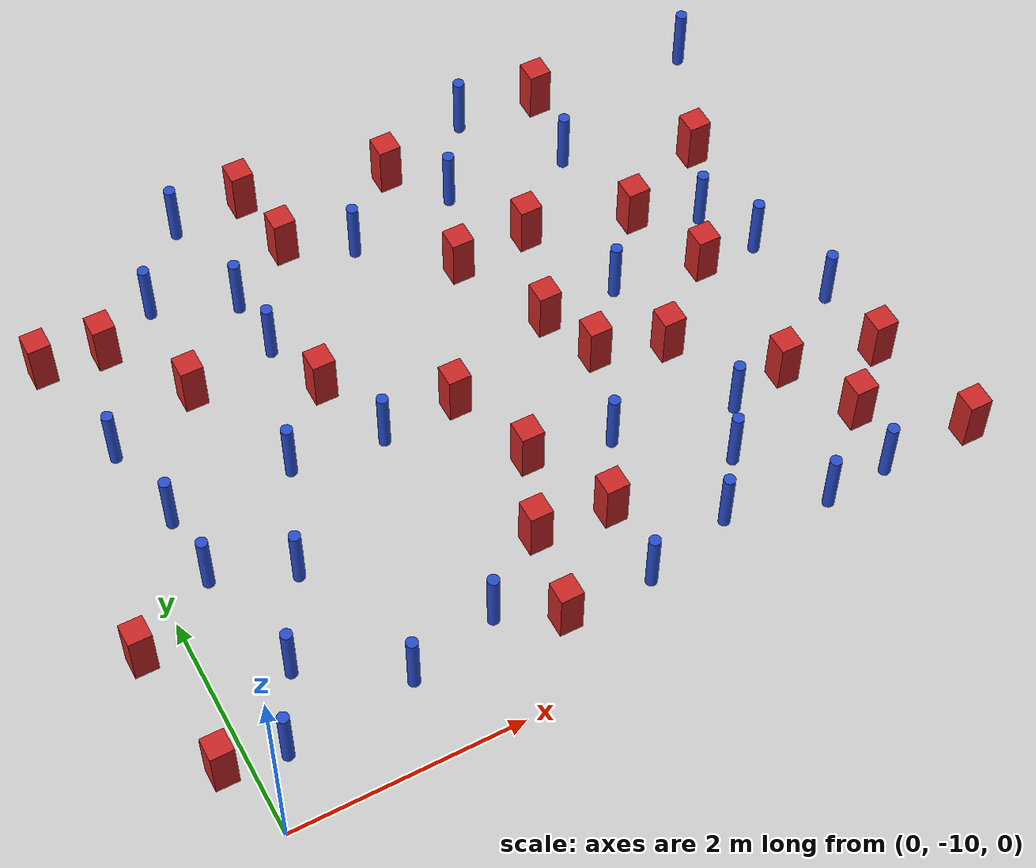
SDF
<sdf version="1.6">
 <world name="default">
  <model name="ground_plane">
   <static>1</static>
   <link name="link">
    <collision name="collision">
     <geometry><plane><normal>0 0 1</normal><size>100 100</size></plane></geometry>
     <surface><friction><ode><mu>100</mu><mu2>50</mu2></ode></friction></surface>
    </collision>
    <visual name="visual">
     <cast_shadows>0</cast_shadows>
     <geometry><plane><normal>0 0 1</normal><size>100 100</size></plane></geometry>
     <material>
      <ambient>1.0 1.0 1.0 1.0</ambient>
      <diffuse>0.8 0.8 0.8 1.0</diffuse>
      <specular>0.01 0.01 0.01 1.000000</specular>
     </material>
    </visual>
   </link>
  </model>
  <model name="pole_obstacle3">
   <static>true</static>
   <pose>2.84458978488 -5.32492261194 2.88873142074e-08 -9.90536689859e-09 4.60219948989e-07 -1.20965994961e-07</pose>
   <link name="link">
    <pose>0 0 0.3 0 -0 0</pose>
    <inertial>
     <mass>1</mass>
     <inertia><ixx>0.145833</ixx><ixy>0</ixy><ixz>0</ixz><iyy>0.145833</iyy><iyz>0</iyz><izz>0.125</izz></inertia>
    </inertial>
    <collision name="collision">
     <geometry><cylinder><radius>0.05</radius><length>.6</length></cylinder></geometry>
    </collision>
    <visual name="visual">
     <geometry><cylinder><radius>0.05</radius><length>.6</length></cylinder></geometry>
     <material>
      <script><name>Gazebo/Blue</name><uri>file://media/materials/scripts/gazebo.material</uri></script>
     </material>
    </visual>
   </link>
  </model>
  <model name="square_post_obstacle5">
   <static>true</static>
   <pose>0.511136152608 -5.36481793861 8.22691968438e-08 7.2212513382e-06 -7.54495500217e-07 2.29674213826e-05</pose>
   <link name="link">
    <pose>0 0 0.25 0 -0 0</pose>
    <inertial>
     <mass>100</mass>
     <inertia>
      <ixx>0.166667</ixx>
      <ixy>0</ixy>
      <ixz>0</ixz>
      <iyy>0.166667</iyy>
      <iyz>0</iyz>
      <izz>0.166667</izz>
     </inertia>
    </inertial>
    <collision name="collision"><geometry><box><size>.2 .2 .5</size></box></geometry></collision>
    <visual name="visual">
     <geometry><box><size>.2 .2 .5</size></box></geometry>
     <material>
      <script><name>Gazebo/Red</name><uri>file://media/materials/scripts/gazebo.material</uri></script>
     </material>
    </visual>
   </link>
  </model>
  <model name="square_post_obstacle6">
   <static>true</static>
   <pose>2.81641735757 -8.63394709874 8.22691968438e-08 7.22125133819e-06 -7.54495500217e-07 2.29674213826e-05</pose>
   <link name="link">
    <pose>0 0 0.25 0 -0 0</pose>
    <inertial>
     <mass>100</mass>
     <inertia>
      <ixx>0.166667</ixx>
      <ixy>0</ixy>
      <ixz>0</ixz>
      <iyy>0.166667</iyy>
      <iyz>0</iyz>
      <izz>0.166667</izz>
     </inertia>
    </inertial>
    <collision name="collision"><geometry><box><size>.2 .2 .5</size></box></geometry></collision>
    <visual name="visual">
     <geometry><box><size>.2 .2 .5</size></box></geometry>
     <material>
      <script><name>Gazebo/Red</name><uri>file://media/materials/scripts/gazebo.material</uri></script>
     </material>
    </visual>
   </link>
  </model>
  <model name="square_post_obstacle8">
   <static>true</static>
   <pose>1.95207442491 -6.52803714667 8.22691968438e-08 7.2212513382e-06 -7.54495500217e-07 2.29674213826e-05</pose>
   <link name="link">
    <pose>0 0 0.25 0 -0 0</pose>
    <inertial>
     <mass>100</mass>
     <inertia>
      <ixx>0.166667</ixx>
      <ixy>0</ixy>
      <ixz>0</ixz>
      <iyy>0.166667</iyy>
      <iyz>0</iyz>
      <izz>0.166667</izz>
     </inertia>
    </inertial>
    <collision name="collision"><geometry><box><size>.2 .2 .5</size></box></geometry></collision>
    <visual name="visual">
     <geometry><box><size>.2 .2 .5</size></box></geometry>
     <material>
      <script><name>Gazebo/Red</name><uri>file://media/materials/scripts/gazebo.material</uri></script>
     </material>
    </visual>
   </link>
  </model>
  <model name="pole_obstacle9">
   <static>true</static>
   <pose>4.30141901712 -4.47266025773 2.88873142074e-08 -9.90536690842e-09 4.60219948965e-07 -1.20965994976e-07</pose>
   <link name="link">
    <pose>0 0 0.3 0 -0 0</pose>
    <inertial>
     <mass>1</mass>
     <inertia><ixx>0.145833</ixx><ixy>0</ixy><ixz>0</ixz><iyy>0.145833</iyy><iyz>0</iyz><izz>0.125</izz></inertia>
    </inertial>
    <collision name="collision">
     <geometry><cylinder><radius>0.05</radius><length>.6</length></cylinder></geometry>
    </collision>
    <visual name="visual">
     <geometry><cylinder><radius>0.05</radius><length>.6</length></cylinder></geometry>
     <material>
      <script><name>Gazebo/Blue</name><uri>file://media/materials/scripts/gazebo.material</uri></script>
     </material>
    </visual>
   </link>
  </model>
  <model name="square_post_obstacle17">
   <static>true</static>
   <pose>2.85667429622 -7.17951583488 8.22691968438e-08 7.2212513382e-06 -7.54495500217e-07 2.29674213826e-05</pose>
   <link name="link">
    <pose>0 0 0.25 0 -0 0</pose>
    <inertial>
     <mass>100</mass>
     <inertia>
      <ixx>0.166667</ixx>
      <ixy>0</ixy>
      <ixz>0</ixz>
      <iyy>0.166667</iyy>
      <iyz>0</iyz>
      <izz>0.166667</izz>
     </inertia>
    </inertial>
    <collision name="collision"><geometry><box><size>.2 .2 .5</size></box></geometry></collision>
    <visual name="visual">
     <geometry><box><size>.2 .2 .5</size></box></geometry>
     <material>
      <script><name>Gazebo/Red</name><uri>file://media/materials/scripts/gazebo.material</uri></script>
     </material>
    </visual>
   </link>
  </model>
  <model name="square_post_obstacle19">
   <static>true</static>
   <pose>2.67007542593 -9.38690693681 8.22691968438e-08 7.22125133819e-06 -7.54495500217e-07 2.29674213826e-05</pose>
   <link name="link">
    <pose>0 0 0.25 0 -0 0</pose>
    <inertial>
     <mass>100</mass>
     <inertia>
      <ixx>0.166667</ixx>
      <ixy>0</ixy>
      <ixz>0</ixz>
      <iyy>0.166667</iyy>
      <iyz>0</iyz>
      <izz>0.166667</izz>
     </inertia>
    </inertial>
    <collision name="collision"><geometry><box><size>.2 .2 .5</size></box></geometry></collision>
    <visual name="visual">
     <geometry><box><size>.2 .2 .5</size></box></geometry>
     <material>
      <script><name>Gazebo/Red</name><uri>file://media/materials/scripts/gazebo.material</uri></script>
     </material>
    </visual>
   </link>
  </model>
  <model name="square_post_obstacle22">
   <static>true</static>
   <pose>3.46571762446 -8.69430635986 8.22691968438e-08 7.22125133819e-06 -7.54495500217e-07 2.29674213826e-05</pose>
   <link name="link">
    <pose>0 0 0.25 0 -0 0</pose>
    <inertial>
     <mass>100</mass>
     <inertia>
      <ixx>0.166667</ixx>
      <ixy>0</ixy>
      <ixz>0</ixz>
      <iyy>0.166667</iyy>
      <iyz>0</iyz>
      <izz>0.166667</izz>
     </inertia>
    </inertial>
    <collision name="collision"><geometry><box><size>.2 .2 .5</size></box></geometry></collision>
    <visual name="visual">
     <geometry><box><size>.2 .2 .5</size></box></geometry>
     <material>
      <script><name>Gazebo/Red</name><uri>file://media/materials/scripts/gazebo.material</uri></script>
     </material>
    </visual>
   </link>
  </model>
  <model name="pole_obstacle16">
   <static>true</static>
   <pose>0.190259198719 -6.33694293951 2.88873142074e-08 -9.90536689711e-09 4.60219948992e-07 -1.2096599496e-07</pose>
   <link name="link">
    <pose>0 0 0.3 0 -0 0</pose>
    <inertial>
     <mass>1</mass>
     <inertia><ixx>0.145833</ixx><ixy>0</ixy><ixz>0</ixz><iyy>0.145833</iyy><iyz>0</iyz><izz>0.125</izz></inertia>
    </inertial>
    <collision name="collision">
     <geometry><cylinder><radius>0.05</radius><length>.6</length></cylinder></geometry>
    </collision>
    <visual name="visual">
     <geometry><cylinder><radius>0.05</radius><length>.6</length></cylinder></geometry>
     <material>
      <script><name>Gazebo/Blue</name><uri>file://media/materials/scripts/gazebo.material</uri></script>
     </material>
    </visual>
   </link>
  </model>
  <model name="square_post_obstacle24">
   <static>true</static>
   <pose>4.21383172551 -5.89049706894 8.22691968438e-08 7.2212513382e-06 -7.54495500217e-07 2.29674213826e-05</pose>
   <link name="link">
    <pose>0 0 0.25 0 -0 0</pose>
    <inertial>
     <mass>100</mass>
     <inertia>
      <ixx>0.166667</ixx>
      <ixy>0</ixy>
      <ixz>0</ixz>
      <iyy>0.166667</iyy>
      <iyz>0</iyz>
      <izz>0.166667</izz>
     </inertia>
    </inertial>
    <collision name="collision"><geometry><box><size>.2 .2 .5</size></box></geometry></collision>
    <visual name="visual">
     <geometry><box><size>.2 .2 .5</size></box></geometry>
     <material>
      <script><name>Gazebo/Red</name><uri>file://media/materials/scripts/gazebo.material</uri></script>
     </material>
    </visual>
   </link>
  </model>
  <model name="pole_obstacle28">
   <static>true</static>
   <pose>1.75358813247 -5.96166153707 2.88873142074e-08 -9.90536689852e-09 4.60219948989e-07 -1.2096599496e-07</pose>
   <link name="link">
    <pose>0 0 0.3 0 -0 0</pose>
    <inertial>
     <mass>1</mass>
     <inertia><ixx>0.145833</ixx><ixy>0</ixy><ixz>0</ixz><iyy>0.145833</iyy><iyz>0</iyz><izz>0.125</izz></inertia>
    </inertial>
    <collision name="collision">
     <geometry><cylinder><radius>0.05</radius><length>.6</length></cylinder></geometry>
    </collision>
    <visual name="visual">
     <geometry><cylinder><radius>0.05</radius><length>.6</length></cylinder></geometry>
     <material>
      <script><name>Gazebo/Blue</name><uri>file://media/materials/scripts/gazebo.material</uri></script>
     </material>
    </visual>
   </link>
  </model>
  <model name="pole_obstacle40">
   <static>true</static>
   <pose>4.92237831998 -5.26978339736 2.88873142074e-08 -9.90536690842e-09 4.60219948965e-07 -1.20965994976e-07</pose>
   <link name="link">
    <pose>0 0 0.3 0 -0 0</pose>
    <inertial>
     <mass>1</mass>
     <inertia><ixx>0.145833</ixx><ixy>0</ixy><ixz>0</ixz><iyy>0.145833</iyy><iyz>0</iyz><izz>0.125</izz></inertia>
    </inertial>
    <collision name="collision">
     <geometry><cylinder><radius>0.05</radius><length>.6</length></cylinder></geometry>
    </collision>
    <visual name="visual">
     <geometry><cylinder><radius>0.05</radius><length>.6</length></cylinder></geometry>
     <material>
      <script><name>Gazebo/Blue</name><uri>file://media/materials/scripts/gazebo.material</uri></script>
     </material>
    </visual>
   </link>
  </model>
  <model name="square_post_obstacle64">
   <static>true</static>
   <pose>5.02813966241 -4.55443018047 8.22691968438e-08 7.22125133819e-06 -7.54495500217e-07 2.29674213826e-05</pose>
   <link name="link">
    <pose>0 0 0.25 0 -0 0</pose>
    <inertial>
     <mass>100</mass>
     <inertia>
      <ixx>0.166667</ixx>
      <ixy>0</ixy>
      <ixz>0</ixz>
      <iyy>0.166667</iyy>
      <iyz>0</iyz>
      <izz>0.166667</izz>
     </inertia>
    </inertial>
    <collision name="collision"><geometry><box><size>.2 .2 .5</size></box></geometry></collision>
    <visual name="visual">
     <geometry><box><size>.2 .2 .5</size></box></geometry>
     <material>
      <script><name>Gazebo/Red</name><uri>file://media/materials/scripts/gazebo.material</uri></script>
     </material>
    </visual>
   </link>
  </model>
  <model name="square_post_obstacle65">
   <static>true</static>
   <pose>3.53477708132 -5.93521886542 8.22691968438e-08 7.2212513382e-06 -7.54495500217e-07 2.29674213826e-05</pose>
   <link name="link">
    <pose>0 0 0.25 0 -0 0</pose>
    <inertial>
     <mass>100</mass>
     <inertia>
      <ixx>0.166667</ixx>
      <ixy>0</ixy>
      <ixz>0</ixz>
      <iyy>0.166667</iyy>
      <iyz>0</iyz>
      <izz>0.166667</izz>
     </inertia>
    </inertial>
    <collision name="collision"><geometry><box><size>.2 .2 .5</size></box></geometry></collision>
    <visual name="visual">
     <geometry><box><size>.2 .2 .5</size></box></geometry>
     <material>
      <script><name>Gazebo/Red</name><uri>file://media/materials/scripts/gazebo.material</uri></script>
     </material>
    </visual>
   </link>
  </model>
  <model name="square_post_obstacle67">
   <static>true</static>
   <pose>3.11410594264 -7.94611886072 8.22691968438e-08 7.2212513382e-06 -7.54495500217e-07 2.29674213826e-05</pose>
   <link name="link">
    <pose>0 0 0.25 0 -0 0</pose>
    <inertial>
     <mass>100</mass>
     <inertia>
      <ixx>0.166667</ixx>
      <ixy>0</ixy>
      <ixz>0</ixz>
      <iyy>0.166667</iyy>
      <iyz>0</iyz>
      <izz>0.166667</izz>
     </inertia>
    </inertial>
    <collision name="collision"><geometry><box><size>.2 .2 .5</size></box></geometry></collision>
    <visual name="visual">
     <geometry><box><size>.2 .2 .5</size></box></geometry>
     <material>
      <script><name>Gazebo/Red</name><uri>file://media/materials/scripts/gazebo.material</uri></script>
     </material>
    </visual>
   </link>
  </model>
  <model name="square_post_obstacle68">
   <static>true</static>
   <pose>3.91148928923 -6.77768033033 8.22691968438e-08 7.2212513382e-06 -7.54495500217e-07 2.29674213826e-05</pose>
   <link name="link">
    <pose>0 0 0.25 0 -0 0</pose>
    <inertial>
     <mass>100</mass>
     <inertia>
      <ixx>0.166667</ixx>
      <ixy>0</ixy>
      <ixz>0</ixz>
      <iyy>0.166667</iyy>
      <iyz>0</iyz>
      <izz>0.166667</izz>
     </inertia>
    </inertial>
    <collision name="collision"><geometry><box><size>.2 .2 .5</size></box></geometry></collision>
    <visual name="visual">
     <geometry><box><size>.2 .2 .5</size></box></geometry>
     <material>
      <script><name>Gazebo/Red</name><uri>file://media/materials/scripts/gazebo.material</uri></script>
     </material>
    </visual>
   </link>
  </model>
  <model name="pole_obstacle72">
   <static>true</static>
   <pose>3.81916104366 -8.09444799313 2.88873142074e-08 -9.90536692318e-09 4.6021994893e-07 -1.20965994988e-07</pose>
   <link name="link">
    <pose>0 0 0.3 0 -0 0</pose>
    <inertial>
     <mass>1</mass>
     <inertia><ixx>0.145833</ixx><ixy>0</ixy><ixz>0</ixz><iyy>0.145833</iyy><iyz>0</iyz><izz>0.125</izz></inertia>
    </inertial>
    <collision name="collision">
     <geometry><cylinder><radius>0.05</radius><length>.6</length></cylinder></geometry>
    </collision>
    <visual name="visual">
     <geometry><cylinder><radius>0.05</radius><length>.6</length></cylinder></geometry>
     <material>
      <script><name>Gazebo/Blue</name><uri>file://media/materials/scripts/gazebo.material</uri></script>
     </material>
    </visual>
   </link>
  </model>
  <model name="pole_obstacle74">
   <static>true</static>
   <pose>3.44195225583 -9.38317818951 2.88873142074e-08 -9.90536692318e-09 4.6021994893e-07 -1.20965994988e-07</pose>
   <link name="link">
    <pose>0 0 0.3 0 -0 0</pose>
    <inertial>
     <mass>1</mass>
     <inertia><ixx>0.145833</ixx><ixy>0</ixy><ixz>0</ixz><iyy>0.145833</iyy><iyz>0</iyz><izz>0.125</izz></inertia>
    </inertial>
    <collision name="collision">
     <geometry><cylinder><radius>0.05</radius><length>.6</length></cylinder></geometry>
    </collision>
    <visual name="visual">
     <geometry><cylinder><radius>0.05</radius><length>.6</length></cylinder></geometry>
     <material>
      <script><name>Gazebo/Blue</name><uri>file://media/materials/scripts/gazebo.material</uri></script>
     </material>
    </visual>
   </link>
  </model>
  <model name="pole_obstacle87">
   <static>true</static>
   <pose>4.23487923382 -9.17419889963 2.88873142074e-08 -9.9053668967e-09 4.60219948993e-07 -1.20965994957e-07</pose>
   <link name="link">
    <pose>0 0 0.3 0 -0 0</pose>
    <inertial>
     <mass>1</mass>
     <inertia><ixx>0.145833</ixx><ixy>0</ixy><ixz>0</ixz><iyy>0.145833</iyy><iyz>0</iyz><izz>0.125</izz></inertia>
    </inertial>
    <collision name="collision">
     <geometry><cylinder><radius>0.05</radius><length>.6</length></cylinder></geometry>
    </collision>
    <visual name="visual">
     <geometry><cylinder><radius>0.05</radius><length>.6</length></cylinder></geometry>
     <material>
      <script><name>Gazebo/Blue</name><uri>file://media/materials/scripts/gazebo.material</uri></script>
     </material>
    </visual>
   </link>
  </model>
  <model name="pole_obstacle94">
   <static>true</static>
   <pose>0.374153041678 -7.7684381649 2.88873142074e-08 -9.90536689683e-09 4.60219948993e-07 -1.20965994957e-07</pose>
   <link name="link">
    <pose>0 0 0.3 0 -0 0</pose>
    <inertial>
     <mass>1</mass>
     <inertia><ixx>0.145833</ixx><ixy>0</ixy><ixz>0</ixz><iyy>0.145833</iyy><iyz>0</iyz><izz>0.125</izz></inertia>
    </inertial>
    <collision name="collision">
     <geometry><cylinder><radius>0.05</radius><length>.6</length></cylinder></geometry>
    </collision>
    <visual name="visual">
     <geometry><cylinder><radius>0.05</radius><length>.6</length></cylinder></geometry>
     <material>
      <script><name>Gazebo/Blue</name><uri>file://media/materials/scripts/gazebo.material</uri></script>
     </material>
    </visual>
   </link>
  </model>
  <model name="pole_obstacle95">
   <static>true</static>
   <pose>0.603857188693 -8.80176054059 2.88873142074e-08 -9.90536690779e-09 4.60219948967e-07 -1.20965994975e-07</pose>
   <link name="link">
    <pose>0 0 0.3 0 -0 0</pose>
    <inertial>
     <mass>1</mass>
     <inertia><ixx>0.145833</ixx><ixy>0</ixy><ixz>0</ixz><iyy>0.145833</iyy><iyz>0</iyz><izz>0.125</izz></inertia>
    </inertial>
    <collision name="collision">
     <geometry><cylinder><radius>0.05</radius><length>.6</length></cylinder></geometry>
    </collision>
    <visual name="visual">
     <geometry><cylinder><radius>0.05</radius><length>.6</length></cylinder></geometry>
     <material>
      <script><name>Gazebo/Blue</name><uri>file://media/materials/scripts/gazebo.material</uri></script>
     </material>
    </visual>
   </link>
  </model>
  <model name="square_post_obstacle84">
   <static>true</static>
   <pose>-0.365849559244 -8.18689786068 8.22691968438e-08 7.22125133819e-06 -7.54495500217e-07 2.29674213826e-05</pose>
   <link name="link">
    <pose>0 0 0.25 0 -0 0</pose>
    <inertial>
     <mass>100</mass>
     <inertia>
      <ixx>0.166667</ixx>
      <ixy>0</ixy>
      <ixz>0</ixz>
      <iyy>0.166667</iyy>
      <iyz>0</iyz>
      <izz>0.166667</izz>
     </inertia>
    </inertial>
    <collision name="collision"><geometry><box><size>.2 .2 .5</size></box></geometry></collision>
    <visual name="visual">
     <geometry><box><size>.2 .2 .5</size></box></geometry>
     <material>
      <script><name>Gazebo/Red</name><uri>file://media/materials/scripts/gazebo.material</uri></script>
     </material>
    </visual>
   </link>
  </model>
  <model name="pole_obstacle98">
   <static>true</static>
   <pose>1.02524683179 -8.05044631468 2.88873142074e-08 -9.90536690572e-09 4.60219948972e-07 -1.20965994971e-07</pose>
   <link name="link">
    <pose>0 0 0.3 0 -0 0</pose>
    <inertial>
     <mass>1</mass>
     <inertia><ixx>0.145833</ixx><ixy>0</ixy><ixz>0</ixz><iyy>0.145833</iyy><iyz>0</iyz><izz>0.125</izz></inertia>
    </inertial>
    <collision name="collision">
     <geometry><cylinder><radius>0.05</radius><length>.6</length></cylinder></geometry>
    </collision>
    <visual name="visual">
     <geometry><cylinder><radius>0.05</radius><length>.6</length></cylinder></geometry>
     <material>
      <script><name>Gazebo/Blue</name><uri>file://media/materials/scripts/gazebo.material</uri></script>
     </material>
    </visual>
   </link>
  </model>
  <model name="pole_obstacle99">
   <static>true</static>
   <pose>2.19051698126 -7.21258978251 2.88873142074e-08 -9.90536689859e-09 4.60219948989e-07 -1.20965994961e-07</pose>
   <link name="link">
    <pose>0 0 0.3 0 -0 0</pose>
    <inertial>
     <mass>1</mass>
     <inertia><ixx>0.145833</ixx><ixy>0</ixy><ixz>0</ixz><iyy>0.145833</iyy><iyz>0</iyz><izz>0.125</izz></inertia>
    </inertial>
    <collision name="collision">
     <geometry><cylinder><radius>0.05</radius><length>.6</length></cylinder></geometry>
    </collision>
    <visual name="visual">
     <geometry><cylinder><radius>0.05</radius><length>.6</length></cylinder></geometry>
     <material>
      <script><name>Gazebo/Blue</name><uri>file://media/materials/scripts/gazebo.material</uri></script>
     </material>
    </visual>
   </link>
  </model>
  <model name="pole_obstacle102">
   <static>true</static>
   <pose>1.39863404991 -9.30623319482 2.88873142074e-08 -9.90536690474e-09 4.60219948974e-07 -1.2096599497e-07</pose>
   <link name="link">
    <pose>0 0 0.3 0 -0 0</pose>
    <inertial>
     <mass>1</mass>
     <inertia><ixx>0.145833</ixx><ixy>0</ixy><ixz>0</ixz><iyy>0.145833</iyy><iyz>0</iyz><izz>0.125</izz></inertia>
    </inertial>
    <collision name="collision">
     <geometry><cylinder><radius>0.05</radius><length>.6</length></cylinder></geometry>
    </collision>
    <visual name="visual">
     <geometry><cylinder><radius>0.05</radius><length>.6</length></cylinder></geometry>
     <material>
      <script><name>Gazebo/Blue</name><uri>file://media/materials/scripts/gazebo.material</uri></script>
     </material>
    </visual>
   </link>
  </model>
  <model name="pole_obstacle106">
   <static>true</static>
   <pose>0.342612914123 -7.13017407084 2.88873142074e-08 -9.90536689683e-09 4.60219948993e-07 -1.20965994957e-07</pose>
   <link name="link">
    <pose>0 0 0.3 0 -0 0</pose>
    <inertial>
     <mass>1</mass>
     <inertia><ixx>0.145833</ixx><ixy>0</ixy><ixz>0</ixz><iyy>0.145833</iyy><iyz>0</iyz><izz>0.125</izz></inertia>
    </inertial>
    <collision name="collision">
     <geometry><cylinder><radius>0.05</radius><length>.6</length></cylinder></geometry>
    </collision>
    <visual name="visual">
     <geometry><cylinder><radius>0.05</radius><length>.6</length></cylinder></geometry>
     <material>
      <script><name>Gazebo/Blue</name><uri>file://media/materials/scripts/gazebo.material</uri></script>
     </material>
    </visual>
   </link>
  </model>
  <model name="pole_obstacle129">
   <static>true</static>
   <pose>5.65396232284 -6.40262588213 2.88873142074e-08 -9.90536690842e-09 4.60219948965e-07 -1.20965994976e-07</pose>
   <link name="link">
    <pose>0 0 0.3 0 -0 0</pose>
    <inertial>
     <mass>1</mass>
     <inertia><ixx>0.145833</ixx><ixy>0</ixy><ixz>0</ixz><iyy>0.145833</iyy><iyz>0</iyz><izz>0.125</izz></inertia>
    </inertial>
    <collision name="collision">
     <geometry><cylinder><radius>0.05</radius><length>.6</length></cylinder></geometry>
    </collision>
    <visual name="visual">
     <geometry><cylinder><radius>0.05</radius><length>.6</length></cylinder></geometry>
     <material>
      <script><name>Gazebo/Blue</name><uri>file://media/materials/scripts/gazebo.material</uri></script>
     </material>
    </visual>
   </link>
  </model>
  <model name="square_post_obstacle114">
   <static>true</static>
   <pose>4.68883700587 -7.49297486902 8.22691968438e-08 7.2212513382e-06 -7.54495500217e-07 2.29674213826e-05</pose>
   <link name="link">
    <pose>0 0 0.25 0 -0 0</pose>
    <inertial>
     <mass>100</mass>
     <inertia>
      <ixx>0.166667</ixx>
      <ixy>0</ixy>
      <ixz>0</ixz>
      <iyy>0.166667</iyy>
      <iyz>0</iyz>
      <izz>0.166667</izz>
     </inertia>
    </inertial>
    <collision name="collision"><geometry><box><size>.2 .2 .5</size></box></geometry></collision>
    <visual name="visual">
     <geometry><box><size>.2 .2 .5</size></box></geometry>
     <material>
      <script><name>Gazebo/Red</name><uri>file://media/materials/scripts/gazebo.material</uri></script>
     </material>
    </visual>
   </link>
  </model>
  <model name="pole_obstacle130">
   <static>true</static>
   <pose>2.18601556092 -9.11193507051 2.88873142074e-08 -9.90536692318e-09 4.6021994893e-07 -1.20965994988e-07</pose>
   <link name="link">
    <pose>0 0 0.3 0 -0 0</pose>
    <inertial>
     <mass>1</mass>
     <inertia><ixx>0.145833</ixx><ixy>0</ixy><ixz>0</ixz><iyy>0.145833</iyy><iyz>0</iyz><izz>0.125</izz></inertia>
    </inertial>
    <collision name="collision">
     <geometry><cylinder><radius>0.05</radius><length>.6</length></cylinder></geometry>
    </collision>
    <visual name="visual">
     <geometry><cylinder><radius>0.05</radius><length>.6</length></cylinder></geometry>
     <material>
      <script><name>Gazebo/Blue</name><uri>file://media/materials/scripts/gazebo.material</uri></script>
     </material>
    </visual>
   </link>
  </model>
  <model name="pole_obstacle131">
   <static>true</static>
   <pose>1.71003131087 -5.40836904196 2.88873142074e-08 -9.90536689852e-09 4.60219948989e-07 -1.2096599496e-07</pose>
   <link name="link">
    <pose>0 0 0.3 0 -0 0</pose>
    <inertial>
     <mass>1</mass>
     <inertia><ixx>0.145833</ixx><ixy>0</ixy><ixz>0</ixz><iyy>0.145833</iyy><iyz>0</iyz><izz>0.125</izz></inertia>
    </inertial>
    <collision name="collision">
     <geometry><cylinder><radius>0.05</radius><length>.6</length></cylinder></geometry>
    </collision>
    <visual name="visual">
     <geometry><cylinder><radius>0.05</radius><length>.6</length></cylinder></geometry>
     <material>
      <script><name>Gazebo/Blue</name><uri>file://media/materials/scripts/gazebo.material</uri></script>
     </material>
    </visual>
   </link>
  </model>
  <model name="pole_obstacle133">
   <static>true</static>
   <pose>4.8772376044 -8.27486449773 2.88873142074e-08 -9.9053668967e-09 4.60219948993e-07 -1.20965994957e-07</pose>
   <link name="link">
    <pose>0 0 0.3 0 -0 0</pose>
    <inertial>
     <mass>1</mass>
     <inertia><ixx>0.145833</ixx><ixy>0</ixy><ixz>0</ixz><iyy>0.145833</iyy><iyz>0</iyz><izz>0.125</izz></inertia>
    </inertial>
    <collision name="collision">
     <geometry><cylinder><radius>0.05</radius><length>.6</length></cylinder></geometry>
    </collision>
    <visual name="visual">
     <geometry><cylinder><radius>0.05</radius><length>.6</length></cylinder></geometry>
     <material>
      <script><name>Gazebo/Blue</name><uri>file://media/materials/scripts/gazebo.material</uri></script>
     </material>
    </visual>
   </link>
  </model>
  <model name="square_post_obstacle117">
   <static>true</static>
   <pose>6.20522581185 -8.34641692814 8.22691968438e-08 7.2212513382e-06 -7.54495500217e-07 2.29674213826e-05</pose>
   <link name="link">
    <pose>0 0 0.25 0 -0 0</pose>
    <inertial>
     <mass>100</mass>
     <inertia>
      <ixx>0.166667</ixx>
      <ixy>0</ixy>
      <ixz>0</ixz>
      <iyy>0.166667</iyy>
      <iyz>0</iyz>
      <izz>0.166667</izz>
     </inertia>
    </inertial>
    <collision name="collision"><geometry><box><size>.2 .2 .5</size></box></geometry></collision>
    <visual name="visual">
     <geometry><box><size>.2 .2 .5</size></box></geometry>
     <material>
      <script><name>Gazebo/Red</name><uri>file://media/materials/scripts/gazebo.material</uri></script>
     </material>
    </visual>
   </link>
  </model>
  <model name="pole_obstacle137">
   <static>true</static>
   <pose>4.59881558569 -8.70639237574 2.88873142074e-08 -9.9053668967e-09 4.60219948993e-07 -1.20965994957e-07</pose>
   <link name="link">
    <pose>0 0 0.3 0 -0 0</pose>
    <inertial>
     <mass>1</mass>
     <inertia><ixx>0.145833</ixx><ixy>0</ixy><ixz>0</ixz><iyy>0.145833</iyy><iyz>0</iyz><izz>0.125</izz></inertia>
    </inertial>
    <collision name="collision">
     <geometry><cylinder><radius>0.05</radius><length>.6</length></cylinder></geometry>
    </collision>
    <visual name="visual">
     <geometry><cylinder><radius>0.05</radius><length>.6</length></cylinder></geometry>
     <material>
      <script><name>Gazebo/Blue</name><uri>file://media/materials/scripts/gazebo.material</uri></script>
     </material>
    </visual>
   </link>
  </model>
  <model name="square_post_obstacle122">
   <static>true</static>
   <pose>5.38179890724 -6.88714911763 8.22691968438e-08 7.22125133819e-06 -7.54495500217e-07 2.29674213826e-05</pose>
   <link name="link">
    <pose>0 0 0.25 0 -0 0</pose>
    <inertial>
     <mass>100</mass>
     <inertia>
      <ixx>0.166667</ixx>
      <ixy>0</ixy>
      <ixz>0</ixz>
      <iyy>0.166667</iyy>
      <iyz>0</iyz>
      <izz>0.166667</izz>
     </inertia>
    </inertial>
    <collision name="collision"><geometry><box><size>.2 .2 .5</size></box></geometry></collision>
    <visual name="visual">
     <geometry><box><size>.2 .2 .5</size></box></geometry>
     <material>
      <script><name>Gazebo/Red</name><uri>file://media/materials/scripts/gazebo.material</uri></script>
     </material>
    </visual>
   </link>
  </model>
  <model name="square_post_obstacle131">
   <static>true</static>
   <pose>5.97041928038 -5.74588378746 8.22691968438e-08 7.22125133819e-06 -7.54495500217e-07 2.29674213826e-05</pose>
   <link name="link">
    <pose>0 0 0.25 0 -0 0</pose>
    <inertial>
     <mass>100</mass>
     <inertia>
      <ixx>0.166667</ixx>
      <ixy>0</ixy>
      <ixz>0</ixz>
      <iyy>0.166667</iyy>
      <iyz>0</iyz>
      <izz>0.166667</izz>
     </inertia>
    </inertial>
    <collision name="collision"><geometry><box><size>.2 .2 .5</size></box></geometry></collision>
    <visual name="visual">
     <geometry><box><size>.2 .2 .5</size></box></geometry>
     <material>
      <script><name>Gazebo/Red</name><uri>file://media/materials/scripts/gazebo.material</uri></script>
     </material>
    </visual>
   </link>
  </model>
  <model name="square_post_obstacle132">
   <static>true</static>
   <pose>3.45008633027 -4.72012096098 8.22691968438e-08 7.22125133819e-06 -7.54495500217e-07 2.29674213826e-05</pose>
   <link name="link">
    <pose>0 0 0.25 0 -0 0</pose>
    <inertial>
     <mass>100</mass>
     <inertia>
      <ixx>0.166667</ixx>
      <ixy>0</ixy>
      <ixz>0</ixz>
      <iyy>0.166667</iyy>
      <iyz>0</iyz>
      <izz>0.166667</izz>
     </inertia>
    </inertial>
    <collision name="collision"><geometry><box><size>.2 .2 .5</size></box></geometry></collision>
    <visual name="visual">
     <geometry><box><size>.2 .2 .5</size></box></geometry>
     <material>
      <script><name>Gazebo/Red</name><uri>file://media/materials/scripts/gazebo.material</uri></script>
     </material>
    </visual>
   </link>
  </model>
  <model name="pole_obstacle147">
   <static>true</static>
   <pose>1.02085726198 -5.11455249653 2.88873142074e-08 -9.90536689905e-09 4.60219948988e-07 -1.20965994961e-07</pose>
   <link name="link">
    <pose>0 0 0.3 0 -0 0</pose>
    <inertial>
     <mass>1</mass>
     <inertia><ixx>0.145833</ixx><ixy>0</ixy><ixz>0</ixz><iyy>0.145833</iyy><iyz>0</iyz><izz>0.125</izz></inertia>
    </inertial>
    <collision name="collision">
     <geometry><cylinder><radius>0.05</radius><length>.6</length></cylinder></geometry>
    </collision>
    <visual name="visual">
     <geometry><cylinder><radius>0.05</radius><length>.6</length></cylinder></geometry>
     <material>
      <script><name>Gazebo/Blue</name><uri>file://media/materials/scripts/gazebo.material</uri></script>
     </material>
    </visual>
   </link>
  </model>
  <model name="pole_obstacle150">
   <static>true</static>
   <pose>5.90653131435 -6.90154987834 2.88873142074e-08 -9.90536690842e-09 4.60219948965e-07 -1.20965994976e-07</pose>
   <link name="link">
    <pose>0 0 0.3 0 -0 0</pose>
    <inertial>
     <mass>1</mass>
     <inertia><ixx>0.145833</ixx><ixy>0</ixy><ixz>0</ixz><iyy>0.145833</iyy><iyz>0</iyz><izz>0.125</izz></inertia>
    </inertial>
    <collision name="collision">
     <geometry><cylinder><radius>0.05</radius><length>.6</length></cylinder></geometry>
    </collision>
    <visual name="visual">
     <geometry><cylinder><radius>0.05</radius><length>.6</length></cylinder></geometry>
     <material>
      <script><name>Gazebo/Blue</name><uri>file://media/materials/scripts/gazebo.material</uri></script>
     </material>
    </visual>
   </link>
  </model>
  <model name="square_post_obstacle143">
   <static>true</static>
   <pose>2.29493867659 -5.03975454313 8.22691968438e-08 7.22125133819e-06 -7.54495500217e-07 2.29674213826e-05</pose>
   <link name="link">
    <pose>0 0 0.25 0 -0 0</pose>
    <inertial>
     <mass>100</mass>
     <inertia>
      <ixx>0.166667</ixx>
      <ixy>0</ixy>
      <ixz>0</ixz>
      <iyy>0.166667</iyy>
      <iyz>0</iyz>
      <izz>0.166667</izz>
     </inertia>
    </inertial>
    <collision name="collision"><geometry><box><size>.2 .2 .5</size></box></geometry></collision>
    <visual name="visual">
     <geometry><box><size>.2 .2 .5</size></box></geometry>
     <material>
      <script><name>Gazebo/Red</name><uri>file://media/materials/scripts/gazebo.material</uri></script>
     </material>
    </visual>
   </link>
  </model>
  <model name="pole_obstacle162">
   <static>true</static>
   <pose>3.82896558437 -5.18830114008 2.88873142074e-08 -9.90536689859e-09 4.60219948989e-07 -1.20965994961e-07</pose>
   <link name="link">
    <pose>0 0 0.3 0 -0 0</pose>
    <inertial>
     <mass>1</mass>
     <inertia><ixx>0.145833</ixx><ixy>0</ixy><ixz>0</ixz><iyy>0.145833</iyy><iyz>0</iyz><izz>0.125</izz></inertia>
    </inertial>
    <collision name="collision">
     <geometry><cylinder><radius>0.05</radius><length>.6</length></cylinder></geometry>
    </collision>
    <visual name="visual">
     <geometry><cylinder><radius>0.05</radius><length>.6</length></cylinder></geometry>
     <material>
      <script><name>Gazebo/Blue</name><uri>file://media/materials/scripts/gazebo.material</uri></script>
     </material>
    </visual>
   </link>
  </model>
  <model name="pole_obstacle163">
   <static>true</static>
   <pose>1.56030782968 -4.41502017997 2.88873142074e-08 -9.90536689852e-09 4.60219948989e-07 -1.2096599496e-07</pose>
   <link name="link">
    <pose>0 0 0.3 0 -0 0</pose>
    <inertial>
     <mass>1</mass>
     <inertia><ixx>0.145833</ixx><ixy>0</ixy><ixz>0</ixz><iyy>0.145833</iyy><iyz>0</iyz><izz>0.125</izz></inertia>
    </inertial>
    <collision name="collision">
     <geometry><cylinder><radius>0.05</radius><length>.6</length></cylinder></geometry>
    </collision>
    <visual name="visual">
     <geometry><cylinder><radius>0.05</radius><length>.6</length></cylinder></geometry>
     <material>
      <script><name>Gazebo/Blue</name><uri>file://media/materials/scripts/gazebo.material</uri></script>
     </material>
    </visual>
   </link>
  </model>
  <model name="square_post_obstacle159">
   <static>true</static>
   <pose>-0.21367799988 -9.34393863416 8.22691968438e-08 7.22125133819e-06 -7.54495500217e-07 2.29674213826e-05</pose>
   <link name="link">
    <pose>0 0 0.25 0 -0 0</pose>
    <inertial>
     <mass>100</mass>
     <inertia>
      <ixx>0.166667</ixx>
      <ixy>0</ixy>
      <ixz>0</ixz>
      <iyy>0.166667</iyy>
      <iyz>0</iyz>
      <izz>0.166667</izz>
     </inertia>
    </inertial>
    <collision name="collision"><geometry><box><size>.2 .2 .5</size></box></geometry></collision>
    <visual name="visual">
     <geometry><box><size>.2 .2 .5</size></box></geometry>
     <material>
      <script><name>Gazebo/Red</name><uri>file://media/materials/scripts/gazebo.material</uri></script>
     </material>
    </visual>
   </link>
  </model>
  <model name="square_post_obstacle163">
   <static>true</static>
   <pose>5.39768020949 -8.16950852891 8.22691968438e-08 7.2212513382e-06 -7.54495500217e-07 2.29674213826e-05</pose>
   <link name="link">
    <pose>0 0 0.25 0 -0 0</pose>
    <inertial>
     <mass>100</mass>
     <inertia>
      <ixx>0.166667</ixx>
      <ixy>0</ixy>
      <ixz>0</ixz>
      <iyy>0.166667</iyy>
      <iyz>0</iyz>
      <izz>0.166667</izz>
     </inertia>
    </inertial>
    <collision name="collision"><geometry><box><size>.2 .2 .5</size></box></geometry></collision>
    <visual name="visual">
     <geometry><box><size>.2 .2 .5</size></box></geometry>
     <material>
      <script><name>Gazebo/Red</name><uri>file://media/materials/scripts/gazebo.material</uri></script>
     </material>
    </visual>
   </link>
  </model>
  <model name="pole_obstacle176">
   <static>true</static>
   <pose>6.45782698042 -4.67842040624 2.88873142074e-08 -9.90536690842e-09 4.60219948965e-07 -1.20965994976e-07</pose>
   <link name="link">
    <pose>0 0 0.3 0 -0 0</pose>
    <inertial>
     <mass>1</mass>
     <inertia><ixx>0.145833</ixx><ixy>0</ixy><ixz>0</ixz><iyy>0.145833</iyy><iyz>0</iyz><izz>0.125</izz></inertia>
    </inertial>
    <collision name="collision">
     <geometry><cylinder><radius>0.05</radius><length>.6</length></cylinder></geometry>
    </collision>
    <visual name="visual">
     <geometry><cylinder><radius>0.05</radius><length>.6</length></cylinder></geometry>
     <material>
      <script><name>Gazebo/Blue</name><uri>file://media/materials/scripts/gazebo.material</uri></script>
     </material>
    </visual>
   </link>
  </model>
  <model name="pole_obstacle177">
   <static>true</static>
   <pose>6.15651056488 -7.65861871904 2.88873142074e-08 -9.90536690842e-09 4.60219948965e-07 -1.20965994976e-07</pose>
   <link name="link">
    <pose>0 0 0.3 0 -0 0</pose>
    <inertial>
     <mass>1</mass>
     <inertia><ixx>0.145833</ixx><ixy>0</ixy><ixz>0</ixz><iyy>0.145833</iyy><iyz>0</iyz><izz>0.125</izz></inertia>
    </inertial>
    <collision name="collision">
     <geometry><cylinder><radius>0.05</radius><length>.6</length></cylinder></geometry>
    </collision>
    <visual name="visual">
     <geometry><cylinder><radius>0.05</radius><length>.6</length></cylinder></geometry>
     <material>
      <script><name>Gazebo/Blue</name><uri>file://media/materials/scripts/gazebo.material</uri></script>
     </material>
    </visual>
   </link>
  </model>
  <model name="square_post_obstacle167">
   <static>true</static>
   <pose>5.7054955282 -8.81515063219 8.22691968438e-08 7.22125133819e-06 -7.54495500217e-07 2.29674213826e-05</pose>
   <link name="link">
    <pose>0 0 0.25 0 -0 0</pose>
    <inertial>
     <mass>100</mass>
     <inertia>
      <ixx>0.166667</ixx>
      <ixy>0</ixy>
      <ixz>0</ixz>
      <iyy>0.166667</iyy>
      <iyz>0</iyz>
      <izz>0.166667</izz>
     </inertia>
    </inertial>
    <collision name="collision"><geometry><box><size>.2 .2 .5</size></box></geometry></collision>
    <visual name="visual">
     <geometry><box><size>.2 .2 .5</size></box></geometry>
     <material>
      <script><name>Gazebo/Red</name><uri>file://media/materials/scripts/gazebo.material</uri></script>
     </material>
    </visual>
   </link>
  </model>
  <model name="pole_obstacle184">
   <static>true</static>
   <pose>1.39172639809 -7.12476379553 2.88873142074e-08 -9.90536689852e-09 4.60219948989e-07 -1.2096599496e-07</pose>
   <link name="link">
    <pose>0 0 0.3 0 -0 0</pose>
    <inertial>
     <mass>1</mass>
     <inertia><ixx>0.145833</ixx><ixy>0</ixy><ixz>0</ixz><iyy>0.145833</iyy><iyz>0</iyz><izz>0.125</izz></inertia>
    </inertial>
    <collision name="collision">
     <geometry><cylinder><radius>0.05</radius><length>.6</length></cylinder></geometry>
    </collision>
    <visual name="visual">
     <geometry><cylinder><radius>0.05</radius><length>.6</length></cylinder></geometry>
     <material>
      <script><name>Gazebo/Blue</name><uri>file://media/materials/scripts/gazebo.material</uri></script>
     </material>
    </visual>
   </link>
  </model>
  <model name="square_post_obstacle182">
   <static>true</static>
   <pose>4.10315495994 -7.297308555 8.22691968438e-08 7.2212513382e-06 -7.54495500217e-07 2.29674213826e-05</pose>
   <link name="link">
    <pose>0 0 0.25 0 -0 0</pose>
    <inertial>
     <mass>100</mass>
     <inertia>
      <ixx>0.166667</ixx>
      <ixy>0</ixy>
      <ixz>0</ixz>
      <iyy>0.166667</iyy>
      <iyz>0</iyz>
      <izz>0.166667</izz>
     </inertia>
    </inertial>
    <collision name="collision"><geometry><box><size>.2 .2 .5</size></box></geometry></collision>
    <visual name="visual">
     <geometry><box><size>.2 .2 .5</size></box></geometry>
     <material>
      <script><name>Gazebo/Red</name><uri>file://media/materials/scripts/gazebo.material</uri></script>
     </material>
    </visual>
   </link>
  </model>
  <model name="square_post_obstacle184">
   <static>true</static>
   <pose>0.982181815553 -6.08419855115 8.22691968438e-08 7.22125133819e-06 -7.54495500217e-07 2.29674213826e-05</pose>
   <link name="link">
    <pose>0 0 0.25 0 -0 0</pose>
    <inertial>
     <mass>100</mass>
     <inertia>
      <ixx>0.166667</ixx>
      <ixy>0</ixy>
      <ixz>0</ixz>
      <iyy>0.166667</iyy>
      <iyz>0</iyz>
      <izz>0.166667</izz>
     </inertia>
    </inertial>
    <collision name="collision"><geometry><box><size>.2 .2 .5</size></box></geometry></collision>
    <visual name="visual">
     <geometry><box><size>.2 .2 .5</size></box></geometry>
     <material>
      <script><name>Gazebo/Red</name><uri>file://media/materials/scripts/gazebo.material</uri></script>
     </material>
    </visual>
   </link>
  </model>
  <model name="square_post_obstacle195">
   <static>true</static>
   <pose>2.19592193387 -4.39449512975 8.22691968438e-08 7.2212513382e-06 -7.54495500217e-07 2.29674213826e-05</pose>
   <link name="link">
    <pose>0 0 0.25 0 -0 0</pose>
    <inertial>
     <mass>100</mass>
     <inertia>
      <ixx>0.166667</ixx>
      <ixy>0</ixy>
      <ixz>0</ixz>
      <iyy>0.166667</iyy>
      <iyz>0</iyz>
      <izz>0.166667</izz>
     </inertia>
    </inertial>
    <collision name="collision"><geometry><box><size>.2 .2 .5</size></box></geometry></collision>
    <visual name="visual">
     <geometry><box><size>.2 .2 .5</size></box></geometry>
     <material>
      <script><name>Gazebo/Red</name><uri>file://media/materials/scripts/gazebo.material</uri></script>
     </material>
    </visual>
   </link>
  </model>
  <model name="pole_obstacle193">
   <static>true</static>
   <pose>5.62908425294 -9.36973738225 2.88873142074e-08 -9.9053668967e-09 4.60219948993e-07 -1.20965994957e-07</pose>
   <link name="link">
    <pose>0 0 0.3 0 -0 0</pose>
    <inertial>
     <mass>1</mass>
     <inertia><ixx>0.145833</ixx><ixy>0</ixy><ixz>0</ixz><iyy>0.145833</iyy><iyz>0</iyz><izz>0.125</izz></inertia>
    </inertial>
    <collision name="collision">
     <geometry><cylinder><radius>0.05</radius><length>.6</length></cylinder></geometry>
    </collision>
    <visual name="visual">
     <geometry><cylinder><radius>0.05</radius><length>.6</length></cylinder></geometry>
     <material>
      <script><name>Gazebo/Blue</name><uri>file://media/materials/scripts/gazebo.material</uri></script>
     </material>
    </visual>
   </link>
  </model>
  <model name="pole_obstacle210">
   <static>true</static>
   <pose>4.60368109826 -6.74977868543 2.88873142074e-08 -9.90536690842e-09 4.60219948965e-07 -1.20965994976e-07</pose>
   <link name="link">
    <pose>0 0 0.3 0 -0 0</pose>
    <inertial>
     <mass>1</mass>
     <inertia><ixx>0.145833</ixx><ixy>0</ixy><ixz>0</ixz><iyy>0.145833</iyy><iyz>0</iyz><izz>0.125</izz></inertia>
    </inertial>
    <collision name="collision">
     <geometry><cylinder><radius>0.05</radius><length>.6</length></cylinder></geometry>
    </collision>
    <visual name="visual">
     <geometry><cylinder><radius>0.05</radius><length>.6</length></cylinder></geometry>
     <material>
      <script><name>Gazebo/Blue</name><uri>file://media/materials/scripts/gazebo.material</uri></script>
     </material>
    </visual>
   </link>
  </model>
  <model name="pole_obstacle212">
   <static>true</static>
   <pose>0.287727295123 -9.42127730083 2.88873142074e-08 -9.90536691191e-09 4.60219948957e-07 -1.20965994982e-07</pose>
   <link name="link">
    <pose>0 0 0.3 0 -0 0</pose>
    <inertial>
     <mass>1</mass>
     <inertia><ixx>0.145833</ixx><ixy>0</ixy><ixz>0</ixz><iyy>0.145833</iyy><iyz>0</iyz><izz>0.125</izz></inertia>
    </inertial>
    <collision name="collision">
     <geometry><cylinder><radius>0.05</radius><length>.6</length></cylinder></geometry>
    </collision>
    <visual name="visual">
     <geometry><cylinder><radius>0.05</radius><length>.6</length></cylinder></geometry>
     <material>
      <script><name>Gazebo/Blue</name><uri>file://media/materials/scripts/gazebo.material</uri></script>
     </material>
    </visual>
   </link>
  </model>
  <model name="pole_obstacle215">
   <static>true</static>
   <pose>5.06207046035 -9.41484615768 2.88873142074e-08 -9.9053668967e-09 4.60219948993e-07 -1.20965994957e-07</pose>
   <link name="link">
    <pose>0 0 0.3 0 -0 0</pose>
    <inertial>
     <mass>1</mass>
     <inertia><ixx>0.145833</ixx><ixy>0</ixy><ixz>0</ixz><iyy>0.145833</iyy><iyz>0</iyz><izz>0.125</izz></inertia>
    </inertial>
    <collision name="collision">
     <geometry><cylinder><radius>0.05</radius><length>.6</length></cylinder></geometry>
    </collision>
    <visual name="visual">
     <geometry><cylinder><radius>0.05</radius><length>.6</length></cylinder></geometry>
     <material>
      <script><name>Gazebo/Blue</name><uri>file://media/materials/scripts/gazebo.material</uri></script>
     </material>
    </visual>
   </link>
  </model>
  <model name="square_post_obstacle208">
   <static>true</static>
   <pose>5.12301131561 -6.15215870385 8.22691968438e-08 7.22125133819e-06 -7.54495500217e-07 2.29674213826e-05</pose>
   <link name="link">
    <pose>0 0 0.25 0 -0 0</pose>
    <inertial>
     <mass>100</mass>
     <inertia>
      <ixx>0.166667</ixx>
      <ixy>0</ixy>
      <ixz>0</ixz>
      <iyy>0.166667</iyy>
      <iyz>0</iyz>
      <izz>0.166667</izz>
     </inertia>
    </inertial>
    <collision name="collision"><geometry><box><size>.2 .2 .5</size></box></geometry></collision>
    <visual name="visual">
     <geometry><box><size>.2 .2 .5</size></box></geometry>
     <material>
      <script><name>Gazebo/Red</name><uri>file://media/materials/scripts/gazebo.material</uri></script>
     </material>
    </visual>
   </link>
  </model>
  <model name="square_post_obstacle212">
   <static>true</static>
   <pose>-0.0247677641926 -5.29393691122 8.22691968438e-08 7.2212513382e-06 -7.54495500217e-07 2.29674213826e-05</pose>
   <link name="link">
    <pose>0 0 0.25 0 -0 0</pose>
    <inertial>
     <mass>100</mass>
     <inertia>
      <ixx>0.166667</ixx>
      <ixy>0</ixy>
      <ixz>0</ixz>
      <iyy>0.166667</iyy>
      <iyz>0</iyz>
      <izz>0.166667</izz>
     </inertia>
    </inertial>
    <collision name="collision"><geometry><box><size>.2 .2 .5</size></box></geometry></collision>
    <visual name="visual">
     <geometry><box><size>.2 .2 .5</size></box></geometry>
     <material>
      <script><name>Gazebo/Red</name><uri>file://media/materials/scripts/gazebo.material</uri></script>
     </material>
    </visual>
   </link>
  </model>
  <model name="square_post_obstacle221">
   <static>true</static>
   <pose>6.42548465919 -9.36781987132 8.22691968438e-08 7.22125133819e-06 -7.54495500217e-07 2.29674213826e-05</pose>
   <link name="link">
    <pose>0 0 0.25 0 -0 0</pose>
    <inertial>
     <mass>100</mass>
     <inertia>
      <ixx>0.166667</ixx>
      <ixy>0</ixy>
      <ixz>0</ixz>
      <iyy>0.166667</iyy>
      <iyz>0</iyz>
      <izz>0.166667</izz>
     </inertia>
    </inertial>
    <collision name="collision"><geometry><box><size>.2 .2 .5</size></box></geometry></collision>
    <visual name="visual">
     <geometry><box><size>.2 .2 .5</size></box></geometry>
     <material>
      <script><name>Gazebo/Red</name><uri>file://media/materials/scripts/gazebo.material</uri></script>
     </material>
    </visual>
   </link>
  </model>
 </world>
</sdf>
